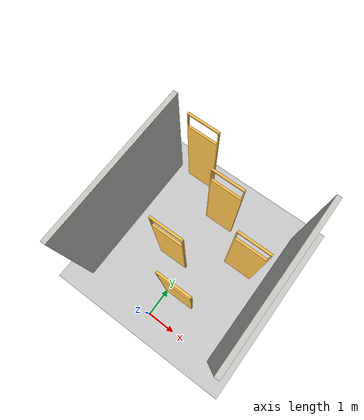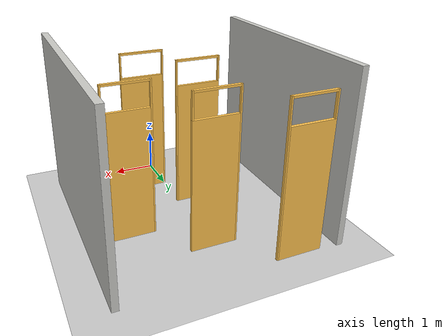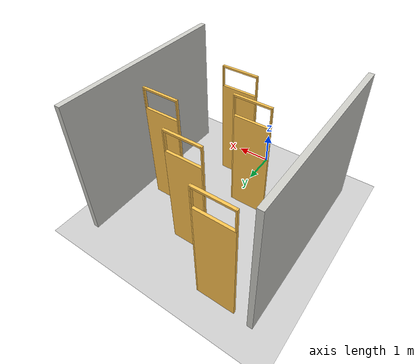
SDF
<sdf version="1.6">
 <world name="default">
  <light name="sun" type="directional">
   <pose>0 0 10 0 -0 0</pose>
   <diffuse>0.8 0.8 0.8 1</diffuse>
   <specular>0.2 0.2 0.2 1</specular>
   <attenuation>
    <range>1000</range>
    <constant>0.9</constant>
    <linear>0.01</linear>
    <quadratic>0.001</quadratic>
   </attenuation>
   <direction>-0.5 0.1 -0.9</direction>
  </light>
  <model name="ground_plane">
   <static>1</static>
   <link name="link">
    <collision name="collision">
     <geometry><plane><normal>0 0 1</normal><size>100 100</size></plane></geometry>
     <surface>
      <contact><collide_bitmask>65535</collide_bitmask></contact>
      <friction><ode><mu>100</mu><mu2>50</mu2></ode></friction>
     </surface>
    </collision>
    <visual name="visual">
     <cast_shadows>0</cast_shadows>
     <geometry><plane><normal>0 0 1</normal><size>100 100</size></plane></geometry>
     <material>
      <script><uri>file://media/materials/scripts/gazebo.material</uri><name>Gazebo/Grey</name></script>
     </material>
    </visual>
   </link>
  </model>
  <gravity>0 0 -9.8</gravity>
  <magnetic_field>6e-06 2.3e-05 -4.2e-05</magnetic_field>
  <atmosphere type="adiabatic"/>
  <physics name="default_physics" default="0" type="ode">
   <max_step_size>0.001</max_step_size>
   <real_time_factor>1</real_time_factor>
   <real_time_update_rate>1000</real_time_update_rate>
  </physics>
  <scene><ambient>0.4 0.4 0.4 1</ambient><background>0.7 0.7 0.7 1</background><shadows>1</shadows></scene>
  <audio><device>default</device></audio>
  <spherical_coordinates>
   <surface_model>EARTH_WGS84</surface_model>
   <latitude_deg>0</latitude_deg>
   <longitude_deg>0</longitude_deg>
   <elevation>0</elevation>
   <heading_deg>0</heading_deg>
  </spherical_coordinates>
  <model name="forip">
   <pose>0 2.5 0 0 -0 0</pose>
   <link name="Wall_0">
    <collision name="Wall_0_Collision">
     <geometry><box><size>5.15 0.15 4</size></box></geometry>
     <pose>0 0 2 0 -0 0</pose>
    </collision>
    <visual name="Wall_0_Visual">
     <pose>0 0 2 0 -0 0</pose>
     <geometry><box><size>5.15 0.15 4</size></box></geometry>
     <material>
      <script><uri>file://media/materials/scripts/gazebo.material</uri><name>Gazebo/CeilingTiled</name></script>
      <ambient>1 1 1 1</ambient>
     </material>
     <meta><layer>0</layer></meta>
    </visual>
    <pose>2.5 0 0 0 -0 1.5708</pose>
   </link>
   <link name="Wall_11">
    <pose>0 1.5 0 0 -0 0</pose>
    <visual name="Wall_11_Visual_0">
     <pose>-0.5175 0 1.8 0 -0 0</pose>
     <geometry><box><size>0.035 0.07 3.6</size></box></geometry>
     <material>
      <script><uri>file://media/materials/scripts/gazebo.material</uri><name>Gazebo/Grey</name></script>
      <ambient>1 0.764706 0.305882 1</ambient>
     </material>
     <meta><layer>0</layer></meta>
    </visual>
    <collision name="Wall_11_Collision_0">
     <geometry><box><size>0.035 0.07 3.6</size></box></geometry>
     <pose>-0.5175 0 1.8 0 -0 0</pose>
    </collision>
    <visual name="Wall_11_Visual_1">
     <pose>0.0175 0 1.5 0 -0 0</pose>
     <geometry><box><size>1.035 0.07 3</size></box></geometry>
     <material>
      <script><uri>file://media/materials/scripts/gazebo.material</uri><name>Gazebo/Grey</name></script>
      <ambient>1 0.764706 0.305882 1</ambient>
     </material>
     <meta><layer>0</layer></meta>
    </visual>
    <collision name="Wall_11_Collision_1">
     <geometry><box><size>1.035 0.07 3</size></box></geometry>
     <pose>0.0175 0 1.5 0 -0 0</pose>
    </collision>
    <visual name="Wall_11_Visual_2">
     <pose>0.5175 0 3.3 0 -0 0</pose>
     <geometry><box><size>0.035 0.07 0.6</size></box></geometry>
     <material>
      <script><uri>file://media/materials/scripts/gazebo.material</uri><name>Gazebo/Grey</name></script>
      <ambient>1 0.764706 0.305882 1</ambient>
     </material>
     <meta><layer>0</layer></meta>
    </visual>
    <collision name="Wall_11_Collision_2">
     <geometry><box><size>0.035 0.07 0.6</size></box></geometry>
     <pose>0.5175 0 3.3 0 -0 0</pose>
    </collision>
    <visual name="Wall_11_Visual_3">
     <pose>0 0 3.575 0 -0 0</pose>
     <geometry><box><size>1 0.07 0.05</size></box></geometry>
     <material>
      <script><uri>file://media/materials/scripts/gazebo.material</uri><name>Gazebo/Grey</name></script>
      <ambient>1 0.764706 0.305882 1</ambient>
     </material>
     <meta><layer>0</layer></meta>
    </visual>
    <collision name="Wall_11_Collision_3">
     <geometry><box><size>1 0.07 0.05</size></box></geometry>
     <pose>0 0 3.575 0 -0 0</pose>
    </collision>
   </link>
   <link name="Wall_13">
    <pose>-1.5 2.478 0 0 -0 3.14159</pose>
    <visual name="Wall_13_Visual_0">
     <pose>-0.5175 0 1.8 0 -0 0</pose>
     <geometry><box><size>0.035 0.07 3.6</size></box></geometry>
     <material>
      <script><uri>file://media/materials/scripts/gazebo.material</uri><name>Gazebo/Grey</name></script>
      <ambient>1 0.764706 0.305882 1</ambient>
     </material>
     <meta><layer>0</layer></meta>
    </visual>
    <collision name="Wall_13_Collision_0">
     <geometry><box><size>0.035 0.07 3.6</size></box></geometry>
     <pose>-0.5175 0 1.8 0 -0 0</pose>
    </collision>
    <visual name="Wall_13_Visual_1">
     <pose>0.0175 0 1.5 0 -0 0</pose>
     <geometry><box><size>1.035 0.07 3</size></box></geometry>
     <material>
      <script><uri>file://media/materials/scripts/gazebo.material</uri><name>Gazebo/Grey</name></script>
      <ambient>1 0.764706 0.305882 1</ambient>
     </material>
     <meta><layer>0</layer></meta>
    </visual>
    <collision name="Wall_13_Collision_1">
     <geometry><box><size>1.035 0.07 3</size></box></geometry>
     <pose>0.0175 0 1.5 0 -0 0</pose>
    </collision>
    <visual name="Wall_13_Visual_2">
     <pose>0.5175 0 3.3 0 -0 0</pose>
     <geometry><box><size>0.035 0.07 0.6</size></box></geometry>
     <material>
      <script><uri>file://media/materials/scripts/gazebo.material</uri><name>Gazebo/Grey</name></script>
      <ambient>1 0.764706 0.305882 1</ambient>
     </material>
     <meta><layer>0</layer></meta>
    </visual>
    <collision name="Wall_13_Collision_2">
     <geometry><box><size>0.035 0.07 0.6</size></box></geometry>
     <pose>0.5175 0 3.3 0 -0 0</pose>
    </collision>
    <visual name="Wall_13_Visual_3">
     <pose>0 0 3.575 0 -0 0</pose>
     <geometry><box><size>1 0.07 0.05</size></box></geometry>
     <material>
      <script><uri>file://media/materials/scripts/gazebo.material</uri><name>Gazebo/Grey</name></script>
      <ambient>1 0.764706 0.305882 1</ambient>
     </material>
     <meta><layer>0</layer></meta>
    </visual>
    <collision name="Wall_13_Collision_3">
     <geometry><box><size>1 0.07 0.05</size></box></geometry>
     <pose>0 0 3.575 0 -0 0</pose>
    </collision>
   </link>
   <link name="Wall_2">
    <collision name="Wall_2_Collision">
     <geometry><box><size>5.15 0.15 4</size></box></geometry>
     <pose>0 0 2 0 -0 0</pose>
    </collision>
    <visual name="Wall_2_Visual">
     <pose>0 0 2 0 -0 0</pose>
     <geometry><box><size>5.15 0.15 4</size></box></geometry>
     <material>
      <script><uri>file://media/materials/scripts/gazebo.material</uri><name>Gazebo/CeilingTiled</name></script>
      <ambient>1 1 1 1</ambient>
     </material>
     <meta><layer>0</layer></meta>
    </visual>
    <pose>-2.5 0 0 0 -0 1.5708</pose>
   </link>
   <link name="Wall_5">
    <pose>0.5 -1.5 0 0 -0 0</pose>
    <visual name="Wall_5_Visual_0">
     <pose>-0.5175 0 1.8 0 -0 0</pose>
     <geometry><box><size>0.035 0.07 3.6</size></box></geometry>
     <material>
      <script><uri>file://media/materials/scripts/gazebo.material</uri><name>Gazebo/Grey</name></script>
      <ambient>1 0.764706 0.305882 1</ambient>
     </material>
     <meta><layer>0</layer></meta>
    </visual>
    <collision name="Wall_5_Collision_0">
     <geometry><box><size>0.035 0.07 3.6</size></box></geometry>
     <pose>-0.5175 0 1.8 0 -0 0</pose>
    </collision>
    <visual name="Wall_5_Visual_1">
     <pose>0.0175 0 1.5 0 -0 0</pose>
     <geometry><box><size>1.035 0.07 3</size></box></geometry>
     <material>
      <script><uri>file://media/materials/scripts/gazebo.material</uri><name>Gazebo/Grey</name></script>
      <ambient>1 0.764706 0.305882 1</ambient>
     </material>
     <meta><layer>0</layer></meta>
    </visual>
    <collision name="Wall_5_Collision_1">
     <geometry><box><size>1.035 0.07 3</size></box></geometry>
     <pose>0.0175 0 1.5 0 -0 0</pose>
    </collision>
    <visual name="Wall_5_Visual_2">
     <pose>0.5175 0 3.3 0 -0 0</pose>
     <geometry><box><size>0.035 0.07 0.6</size></box></geometry>
     <material>
      <script><uri>file://media/materials/scripts/gazebo.material</uri><name>Gazebo/Grey</name></script>
      <ambient>1 0.764706 0.305882 1</ambient>
     </material>
     <meta><layer>0</layer></meta>
    </visual>
    <collision name="Wall_5_Collision_2">
     <geometry><box><size>0.035 0.07 0.6</size></box></geometry>
     <pose>0.5175 0 3.3 0 -0 0</pose>
    </collision>
    <visual name="Wall_5_Visual_3">
     <pose>0 0 3.575 0 -0 0</pose>
     <geometry><box><size>1 0.07 0.05</size></box></geometry>
     <material>
      <script><uri>file://media/materials/scripts/gazebo.material</uri><name>Gazebo/Grey</name></script>
      <ambient>1 0.764706 0.305882 1</ambient>
     </material>
     <meta><layer>0</layer></meta>
    </visual>
    <collision name="Wall_5_Collision_3">
     <geometry><box><size>1 0.07 0.05</size></box></geometry>
     <pose>0 0 3.575 0 -0 0</pose>
    </collision>
   </link>
   <link name="Wall_7">
    <pose>-0.5 -0.5 0 0 -0 3.14159</pose>
    <visual name="Wall_7_Visual_0">
     <pose>-0.5175 0 1.8 0 -0 0</pose>
     <geometry><box><size>0.035 0.07 3.6</size></box></geometry>
     <material>
      <script><uri>file://media/materials/scripts/gazebo.material</uri><name>Gazebo/Grey</name></script>
      <ambient>1 0.764706 0.305882 1</ambient>
     </material>
     <meta><layer>0</layer></meta>
    </visual>
    <collision name="Wall_7_Collision_0">
     <geometry><box><size>0.035 0.07 3.6</size></box></geometry>
     <pose>-0.5175 0 1.8 0 -0 0</pose>
    </collision>
    <visual name="Wall_7_Visual_1">
     <pose>0.0175 0 1.5 0 -0 0</pose>
     <geometry><box><size>1.035 0.07 3</size></box></geometry>
     <material>
      <script><uri>file://media/materials/scripts/gazebo.material</uri><name>Gazebo/Grey</name></script>
      <ambient>1 0.764706 0.305882 1</ambient>
     </material>
     <meta><layer>0</layer></meta>
    </visual>
    <collision name="Wall_7_Collision_1">
     <geometry><box><size>1.035 0.07 3</size></box></geometry>
     <pose>0.0175 0 1.5 0 -0 0</pose>
    </collision>
    <visual name="Wall_7_Visual_2">
     <pose>0.5175 0 3.3 0 -0 0</pose>
     <geometry><box><size>0.035 0.07 0.6</size></box></geometry>
     <material>
      <script><uri>file://media/materials/scripts/gazebo.material</uri><name>Gazebo/Grey</name></script>
      <ambient>1 0.764706 0.305882 1</ambient>
     </material>
     <meta><layer>0</layer></meta>
    </visual>
    <collision name="Wall_7_Collision_2">
     <geometry><box><size>0.035 0.07 0.6</size></box></geometry>
     <pose>0.5175 0 3.3 0 -0 0</pose>
    </collision>
    <visual name="Wall_7_Visual_3">
     <pose>0 0 3.575 0 -0 0</pose>
     <geometry><box><size>1 0.07 0.05</size></box></geometry>
     <material>
      <script><uri>file://media/materials/scripts/gazebo.material</uri><name>Gazebo/Grey</name></script>
      <ambient>1 0.764706 0.305882 1</ambient>
     </material>
     <meta><layer>0</layer></meta>
    </visual>
    <collision name="Wall_7_Collision_3">
     <geometry><box><size>1 0.07 0.05</size></box></geometry>
     <pose>0 0 3.575 0 -0 0</pose>
    </collision>
   </link>
   <link name="Wall_9">
    <pose>1.5 0.5 0 0 -0 0</pose>
    <visual name="Wall_9_Visual_0">
     <pose>-0.5175 0 1.8 0 -0 0</pose>
     <geometry><box><size>0.035 0.07 3.6</size></box></geometry>
     <material>
      <script><uri>file://media/materials/scripts/gazebo.material</uri><name>Gazebo/Grey</name></script>
      <ambient>1 0.764706 0.305882 1</ambient>
     </material>
     <meta><layer>0</layer></meta>
    </visual>
    <collision name="Wall_9_Collision_0">
     <geometry><box><size>0.035 0.07 3.6</size></box></geometry>
     <pose>-0.5175 0 1.8 0 -0 0</pose>
    </collision>
    <visual name="Wall_9_Visual_1">
     <pose>0.0175 0 1.5 0 -0 0</pose>
     <geometry><box><size>1.035 0.07 3</size></box></geometry>
     <material>
      <script><uri>file://media/materials/scripts/gazebo.material</uri><name>Gazebo/Grey</name></script>
      <ambient>1 0.764706 0.305882 1</ambient>
     </material>
     <meta><layer>0</layer></meta>
    </visual>
    <collision name="Wall_9_Collision_1">
     <geometry><box><size>1.035 0.07 3</size></box></geometry>
     <pose>0.0175 0 1.5 0 -0 0</pose>
    </collision>
    <visual name="Wall_9_Visual_2">
     <pose>0.5175 0 3.3 0 -0 0</pose>
     <geometry><box><size>0.035 0.07 0.6</size></box></geometry>
     <material>
      <script><uri>file://media/materials/scripts/gazebo.material</uri><name>Gazebo/Grey</name></script>
      <ambient>1 0.764706 0.305882 1</ambient>
     </material>
     <meta><layer>0</layer></meta>
    </visual>
    <collision name="Wall_9_Collision_2">
     <geometry><box><size>0.035 0.07 0.6</size></box></geometry>
     <pose>0.5175 0 3.3 0 -0 0</pose>
    </collision>
    <visual name="Wall_9_Visual_3">
     <pose>0 0 3.575 0 -0 0</pose>
     <geometry><box><size>1 0.07 0.05</size></box></geometry>
     <material>
      <script><uri>file://media/materials/scripts/gazebo.material</uri><name>Gazebo/Grey</name></script>
      <ambient>1 0.764706 0.305882 1</ambient>
     </material>
     <meta><layer>0</layer></meta>
    </visual>
    <collision name="Wall_9_Collision_3">
     <geometry><box><size>1 0.07 0.05</size></box></geometry>
     <pose>0 0 3.575 0 -0 0</pose>
    </collision>
   </link>
   <static>1</static>
  </model>
  <light name="user_point_light_0" type="point">
   <pose>0 0 4 0 -0 0</pose>
   <diffuse>0.5 0.5 0.5 1</diffuse>
   <specular>0.1 0.1 0.1 1</specular>
   <attenuation>
    <range>20</range>
    <constant>0.5</constant>
    <linear>0.01</linear>
    <quadratic>0.001</quadratic>
   </attenuation>
   <cast_shadows>0</cast_shadows>
   <direction>0 0 -1</direction>
  </light>
  <light name="user_point_light_1" type="point">
   <pose>0 2 5 0 -0 0</pose>
   <diffuse>0.5 0.5 0.5 1</diffuse>
   <specular>0.1 0.1 0.1 1</specular>
   <attenuation>
    <range>20</range>
    <constant>0.5</constant>
    <linear>0.01</linear>
    <quadratic>0.001</quadratic>
   </attenuation>
   <cast_shadows>0</cast_shadows>
   <direction>0 0 -1</direction>
  </light>
  <light name="user_point_light_2" type="point">
   <pose>-0.116603 1.02384 1 0 -0 0</pose>
   <diffuse>0.5 0.5 0.5 1</diffuse>
   <specular>0.1 0.1 0.1 1</specular>
   <attenuation>
    <range>20</range>
    <constant>0.5</constant>
    <linear>0.01</linear>
    <quadratic>0.001</quadratic>
   </attenuation>
   <cast_shadows>0</cast_shadows>
   <direction>0 0 -1</direction>
  </light>
  <light name="user_point_light_3" type="point">
   <pose>0.317747 2.94679 1 0 -0 0</pose>
   <diffuse>0.5 0.5 0.5 1</diffuse>
   <specular>0.1 0.1 0.1 1</specular>
   <attenuation>
    <range>20</range>
    <constant>0.5</constant>
    <linear>0.01</linear>
    <quadratic>0.001</quadratic>
   </attenuation>
   <cast_shadows>0</cast_shadows>
   <direction>0 0 -1</direction>
  </light>
  <light name="user_point_light_4" type="point">
   <pose>0.779477 3.96387 1 0 -0 0</pose>
   <diffuse>0.5 0.5 0.5 1</diffuse>
   <specular>0.1 0.1 0.1 1</specular>
   <attenuation>
    <range>20</range>
    <constant>0.5</constant>
    <linear>0.01</linear>
    <quadratic>0.001</quadratic>
   </attenuation>
   <cast_shadows>0</cast_shadows>
   <direction>0 0 -1</direction>
  </light>
  <light name="user_point_light_5" type="point">
   <pose>0.314811 4.80149 1 0 -0 0</pose>
   <diffuse>0.5 0.5 0.5 1</diffuse>
   <specular>0.1 0.1 0.1 1</specular>
   <attenuation>
    <range>20</range>
    <constant>0.5</constant>
    <linear>0.01</linear>
    <quadratic>0.001</quadratic>
   </attenuation>
   <cast_shadows>0</cast_shadows>
   <direction>0 0 -1</direction>
  </light>
 </world>
</sdf>
